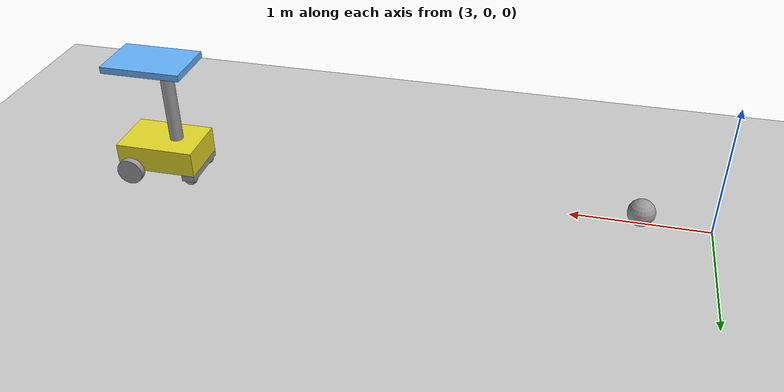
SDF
<sdf version="1.6">
 <world name="default">
  <model name="ground_plane">
   <static>1</static>
   <link name="link">
    <collision name="collision">
     <geometry><plane><normal>0 0 1</normal><size>100 100</size></plane></geometry>
     <surface><friction><ode><mu>100</mu><mu2>50</mu2></ode></friction></surface>
    </collision>
    <visual name="visual">
     <cast_shadows>0</cast_shadows>
     <geometry><plane><normal>0 0 1</normal><size>100 100</size></plane></geometry>
     <material>
      <script><uri>file://media/materials/scripts/gazebo.material</uri><name>Gazebo/Grey</name></script>
     </material>
    </visual>
   </link>
  </model>
  <model name="deliver_robot_5_0">
   <link name="link_0_clone">
    <pose>-0.002083 -0 0.033333 -0 -0 -0</pose>
    <inertial>
     <mass>1</mass>
     <inertia>
      <ixx>0.166667</ixx>
      <ixy>0</ixy>
      <ixz>0</ixz>
      <iyy>0.166667</iyy>
      <iyz>0</iyz>
      <izz>0.166667</izz>
     </inertia>
    </inertial>
    <visual name="visual">
     <geometry><box><size>0.6 0.4 0.2</size></box></geometry>
     <material>
      <lighting>1</lighting>
      <script><uri>file://media/materials/scripts/gazebo.material</uri><name>Gazebo/Yellow</name></script>
      <shader type="pixel"><normal_map>__default__</normal_map></shader>
      <ambient>0.2 0.8 1 1</ambient>
      <diffuse>0.4 0.7 1 1</diffuse>
      <specular>0.2 0.2 0.2 1</specular>
      <emissive>0 0 0 1</emissive>
     </material>
    </visual>
    <collision name="collision">
     <geometry><box><size>0.6 0.4 0.2</size></box></geometry>
     <surface>
      <friction>
       <ode><mu>1</mu><mu2>1</mu2><fdir1>0 0 0</fdir1><slip1>0</slip1><slip2>0</slip2></ode>
       <torsional>
        <coefficient>1</coefficient>
        <patch_radius>0</patch_radius>
        <surface_radius>0</surface_radius>
        <use_patch_radius>1</use_patch_radius>
        <ode><slip>0</slip></ode>
       </torsional>
      </friction>
      <bounce><restitution_coefficient>0</restitution_coefficient><threshold>1e+06</threshold></bounce>
      <contact>
       <collide_without_contact>0</collide_without_contact>
       <collide_without_contact_bitmask>1</collide_without_contact_bitmask>
       <collide_bitmask>1</collide_bitmask>
       <ode>
        <soft_cfm>0</soft_cfm>
        <soft_erp>0.2</soft_erp>
        <kp>1e+13</kp>
        <kd>1</kd>
        <max_vel>0.01</max_vel>
        <min_depth>0</min_depth>
       </ode>
       <bullet>
        <split_impulse>1</split_impulse>
        <split_impulse_penetration_threshold>-0.01</split_impulse_penetration_threshold>
        <soft_cfm>0</soft_cfm>
        <soft_erp>0.2</soft_erp>
        <kp>1e+13</kp>
        <kd>1</kd>
       </bullet>
      </contact>
     </surface>
    </collision>
   </link>
   <link name="link_1_clone">
    <pose>0.197917 -0.22501 -0.066667 1.5707 -0 0</pose>
    <inertial>
     <mass>1</mass>
     <inertia><ixx>0.145833</ixx><ixy>0</ixy><ixz>0</ixz><iyy>0.145833</iyy><iyz>0</iyz><izz>0.125</izz></inertia>
    </inertial>
    <visual name="visual">
     <geometry><cylinder><radius>0.1</radius><length>0.05</length></cylinder></geometry>
     <material>
      <lighting>1</lighting>
      <script><uri>file://media/materials/scripts/gazebo.material</uri><name>Gazebo/Grey</name></script>
      <shader type="pixel"><normal_map>__default__</normal_map></shader>
      <ambient>0.3 0.3 0.3 1</ambient>
      <diffuse>0.7 0.7 0.7 1</diffuse>
      <specular>0.01 0.01 0.01 1</specular>
      <emissive>0 0 0 1</emissive>
     </material>
    </visual>
    <collision name="collision">
     <geometry><cylinder><radius>0.1</radius><length>0.05</length></cylinder></geometry>
     <surface>
      <friction>
       <ode><mu>1</mu><mu2>1</mu2><fdir1>0 0 0</fdir1><slip1>0</slip1><slip2>0</slip2></ode>
       <torsional>
        <coefficient>1</coefficient>
        <patch_radius>0</patch_radius>
        <surface_radius>0</surface_radius>
        <use_patch_radius>1</use_patch_radius>
        <ode><slip>0</slip></ode>
       </torsional>
      </friction>
      <bounce><restitution_coefficient>0</restitution_coefficient><threshold>1e+06</threshold></bounce>
      <contact>
       <collide_without_contact>0</collide_without_contact>
       <collide_without_contact_bitmask>1</collide_without_contact_bitmask>
       <collide_bitmask>1</collide_bitmask>
       <ode>
        <soft_cfm>0</soft_cfm>
        <soft_erp>0.2</soft_erp>
        <kp>1e+13</kp>
        <kd>1</kd>
        <max_vel>0.01</max_vel>
        <min_depth>0</min_depth>
       </ode>
       <bullet>
        <split_impulse>1</split_impulse>
        <split_impulse_penetration_threshold>-0.01</split_impulse_penetration_threshold>
        <soft_cfm>0</soft_cfm>
        <soft_erp>0.2</soft_erp>
        <kp>1e+13</kp>
        <kd>1</kd>
       </bullet>
      </contact>
     </surface>
    </collision>
   </link>
   <link name="link_1_clone_0">
    <pose>0.197917 0.22501 -0.066667 1.5707 -0 0</pose>
    <inertial>
     <mass>1</mass>
     <inertia><ixx>0.145833</ixx><ixy>0</ixy><ixz>0</ixz><iyy>0.145833</iyy><iyz>0</iyz><izz>0.125</izz></inertia>
    </inertial>
    <visual name="visual">
     <geometry><cylinder><radius>0.1</radius><length>0.05</length></cylinder></geometry>
     <material>
      <lighting>1</lighting>
      <script><uri>file://media/materials/scripts/gazebo.material</uri><name>Gazebo/Grey</name></script>
      <shader type="pixel"><normal_map>__default__</normal_map></shader>
      <ambient>0.3 0.3 0.3 1</ambient>
      <diffuse>0.7 0.7 0.7 1</diffuse>
      <specular>0.01 0.01 0.01 1</specular>
      <emissive>0 0 0 1</emissive>
     </material>
    </visual>
    <collision name="collision">
     <geometry><cylinder><radius>0.1</radius><length>0.05</length></cylinder></geometry>
     <surface>
      <friction>
       <ode><mu>1</mu><mu2>1</mu2><fdir1>0 0 0</fdir1><slip1>0</slip1><slip2>0</slip2></ode>
       <torsional>
        <coefficient>1</coefficient>
        <patch_radius>0</patch_radius>
        <surface_radius>0</surface_radius>
        <use_patch_radius>1</use_patch_radius>
        <ode><slip>0</slip></ode>
       </torsional>
      </friction>
      <bounce><restitution_coefficient>0</restitution_coefficient><threshold>1e+06</threshold></bounce>
      <contact>
       <collide_without_contact>0</collide_without_contact>
       <collide_without_contact_bitmask>1</collide_without_contact_bitmask>
       <collide_bitmask>1</collide_bitmask>
       <ode>
        <soft_cfm>0</soft_cfm>
        <soft_erp>0.2</soft_erp>
        <kp>1e+13</kp>
        <kd>1</kd>
        <max_vel>0.01</max_vel>
        <min_depth>0</min_depth>
       </ode>
       <bullet>
        <split_impulse>1</split_impulse>
        <split_impulse_penetration_threshold>-0.01</split_impulse_penetration_threshold>
        <soft_cfm>0</soft_cfm>
        <soft_erp>0.2</soft_erp>
        <kp>1e+13</kp>
        <kd>1</kd>
       </bullet>
      </contact>
     </surface>
    </collision>
   </link>
   <link name="link_2_clone">
    <pose>-0.252083 -0.15 -0.116667 -0 -0 -0</pose>
    <inertial>
     <mass>1</mass>
     <inertia><ixx>0.1</ixx><ixy>0</ixy><ixz>0</ixz><iyy>0.1</iyy><iyz>0</iyz><izz>0.1</izz></inertia>
    </inertial>
    <visual name="visual">
     <geometry><sphere><radius>0.05</radius></sphere></geometry>
     <material>
      <lighting>1</lighting>
      <script><uri>file://media/materials/scripts/gazebo.material</uri><name>Gazebo/Grey</name></script>
      <shader type="pixel"><normal_map>__default__</normal_map></shader>
      <ambient>1 1 1 1</ambient>
      <diffuse>0.7 0.7 0.7 1</diffuse>
      <specular>0.01 0.01 0.01 1</specular>
      <emissive>0 0 0 1</emissive>
     </material>
    </visual>
    <collision name="collision">
     <geometry><sphere><radius>0.05</radius></sphere></geometry>
     <surface>
      <friction>
       <ode><mu>1</mu><mu2>1</mu2><fdir1>0 0 0</fdir1><slip1>0</slip1><slip2>0</slip2></ode>
       <torsional>
        <coefficient>1</coefficient>
        <patch_radius>0</patch_radius>
        <surface_radius>0</surface_radius>
        <use_patch_radius>1</use_patch_radius>
        <ode><slip>0</slip></ode>
       </torsional>
      </friction>
      <bounce><restitution_coefficient>0</restitution_coefficient><threshold>1e+06</threshold></bounce>
      <contact>
       <collide_without_contact>0</collide_without_contact>
       <collide_without_contact_bitmask>1</collide_without_contact_bitmask>
       <collide_bitmask>1</collide_bitmask>
       <ode>
        <soft_cfm>0</soft_cfm>
        <soft_erp>0.2</soft_erp>
        <kp>1e+13</kp>
        <kd>1</kd>
        <max_vel>0.01</max_vel>
        <min_depth>0</min_depth>
       </ode>
       <bullet>
        <split_impulse>1</split_impulse>
        <split_impulse_penetration_threshold>-0.01</split_impulse_penetration_threshold>
        <soft_cfm>0</soft_cfm>
        <soft_erp>0.2</soft_erp>
        <kp>1e+13</kp>
        <kd>1</kd>
       </bullet>
      </contact>
     </surface>
    </collision>
   </link>
   <link name="link_2_clone_0">
    <pose>-0.252083 0.15 -0.116667 -0 -0 -0</pose>
    <inertial>
     <mass>1</mass>
     <inertia><ixx>0.1</ixx><ixy>0</ixy><ixz>0</ixz><iyy>0.1</iyy><iyz>0</iyz><izz>0.1</izz></inertia>
    </inertial>
    <visual name="visual">
     <geometry><sphere><radius>0.05</radius></sphere></geometry>
     <material>
      <lighting>1</lighting>
      <script><uri>file://media/materials/scripts/gazebo.material</uri><name>Gazebo/Grey</name></script>
      <shader type="pixel"><normal_map>__default__</normal_map></shader>
      <ambient>1 1 1 1</ambient>
      <diffuse>0.7 0.7 0.7 1</diffuse>
      <specular>0.01 0.01 0.01 1</specular>
      <emissive>0 0 0 1</emissive>
     </material>
    </visual>
    <collision name="collision">
     <geometry><sphere><radius>0.05</radius></sphere></geometry>
     <surface>
      <friction>
       <ode><mu>1</mu><mu2>1</mu2><fdir1>0 0 0</fdir1><slip1>0</slip1><slip2>0</slip2></ode>
       <torsional>
        <coefficient>1</coefficient>
        <patch_radius>0</patch_radius>
        <surface_radius>0</surface_radius>
        <use_patch_radius>1</use_patch_radius>
        <ode><slip>0</slip></ode>
       </torsional>
      </friction>
      <bounce><restitution_coefficient>0</restitution_coefficient><threshold>1e+06</threshold></bounce>
      <contact>
       <collide_without_contact>0</collide_without_contact>
       <collide_without_contact_bitmask>1</collide_without_contact_bitmask>
       <collide_bitmask>1</collide_bitmask>
       <ode>
        <soft_cfm>0</soft_cfm>
        <soft_erp>0.2</soft_erp>
        <kp>1e+13</kp>
        <kd>1</kd>
        <max_vel>0.01</max_vel>
        <min_depth>0</min_depth>
       </ode>
       <bullet>
        <split_impulse>1</split_impulse>
        <split_impulse_penetration_threshold>-0.01</split_impulse_penetration_threshold>
        <soft_cfm>0</soft_cfm>
        <soft_erp>0.2</soft_erp>
        <kp>1e+13</kp>
        <kd>1</kd>
       </bullet>
      </contact>
     </surface>
    </collision>
   </link>
   <link name="link_3_clone">
    <pose>-0.252083 -0 -0.091667 -0 -0 -0</pose>
    <inertial>
     <mass>1</mass>
     <inertia>
      <ixx>0.166667</ixx>
      <ixy>0</ixy>
      <ixz>0</ixz>
      <iyy>0.166667</iyy>
      <iyz>0</iyz>
      <izz>0.166667</izz>
     </inertia>
    </inertial>
    <visual name="visual">
     <geometry><box><size>0.1 0.4 0.05</size></box></geometry>
     <material>
      <lighting>1</lighting>
      <script><uri>file://media/materials/scripts/gazebo.material</uri><name>Gazebo/Grey</name></script>
      <shader type="pixel"><normal_map>__default__</normal_map></shader>
      <ambient>0.3 0.3 0.3 1</ambient>
      <diffuse>0.7 0.7 0.7 1</diffuse>
      <specular>0.01 0.01 0.01 1</specular>
      <emissive>0 0 0 1</emissive>
     </material>
    </visual>
    <collision name="collision">
     <geometry><box><size>0.1 0.4 0.05</size></box></geometry>
     <surface>
      <friction>
       <ode><mu>1</mu><mu2>1</mu2><fdir1>0 0 0</fdir1><slip1>0</slip1><slip2>0</slip2></ode>
       <torsional>
        <coefficient>1</coefficient>
        <patch_radius>0</patch_radius>
        <surface_radius>0</surface_radius>
        <use_patch_radius>1</use_patch_radius>
        <ode><slip>0</slip></ode>
       </torsional>
      </friction>
      <bounce><restitution_coefficient>0</restitution_coefficient><threshold>1e+06</threshold></bounce>
      <contact>
       <collide_without_contact>0</collide_without_contact>
       <collide_without_contact_bitmask>1</collide_without_contact_bitmask>
       <collide_bitmask>1</collide_bitmask>
       <ode>
        <soft_cfm>0</soft_cfm>
        <soft_erp>0.2</soft_erp>
        <kp>1e+13</kp>
        <kd>1</kd>
        <max_vel>0.01</max_vel>
        <min_depth>0</min_depth>
       </ode>
       <bullet>
        <split_impulse>1</split_impulse>
        <split_impulse_penetration_threshold>-0.01</split_impulse_penetration_threshold>
        <soft_cfm>0</soft_cfm>
        <soft_erp>0.2</soft_erp>
        <kp>1e+13</kp>
        <kd>1</kd>
       </bullet>
      </contact>
     </surface>
    </collision>
   </link>
   <link name="link_4_clone">
    <pose>-0.002083 -0 0.758333 -0 -0 -0</pose>
    <inertial>
     <mass>1</mass>
     <inertia>
      <ixx>0.166667</ixx>
      <ixy>0</ixy>
      <ixz>0</ixz>
      <iyy>0.166667</iyy>
      <iyz>0</iyz>
      <izz>0.166667</izz>
     </inertia>
    </inertial>
    <visual name="visual">
     <geometry><box><size>0.6 0.4 0.05</size></box></geometry>
     <material>
      <lighting>1</lighting>
      <script><uri>file://media/materials/scripts/gazebo.material</uri><name>Gazebo/Grey</name></script>
      <shader type="pixel"><normal_map>__default__</normal_map></shader>
      <ambient>0.2 0.8 1 1</ambient>
      <diffuse>0.4 0.7 1 1</diffuse>
      <specular>0.2 0.2 0.2 1</specular>
      <emissive>0 0 0 1</emissive>
     </material>
    </visual>
    <collision name="collision">
     <geometry><box><size>0.6 0.4 0.05</size></box></geometry>
     <surface>
      <friction>
       <ode><mu>1</mu><mu2>1</mu2><fdir1>0 0 0</fdir1><slip1>0</slip1><slip2>0</slip2></ode>
       <torsional>
        <coefficient>1</coefficient>
        <patch_radius>0</patch_radius>
        <surface_radius>0</surface_radius>
        <use_patch_radius>1</use_patch_radius>
        <ode><slip>0</slip></ode>
       </torsional>
      </friction>
      <bounce><restitution_coefficient>0</restitution_coefficient><threshold>1e+06</threshold></bounce>
      <contact>
       <collide_without_contact>0</collide_without_contact>
       <collide_without_contact_bitmask>1</collide_without_contact_bitmask>
       <collide_bitmask>1</collide_bitmask>
       <ode>
        <soft_cfm>0</soft_cfm>
        <soft_erp>0.2</soft_erp>
        <kp>1e+13</kp>
        <kd>1</kd>
        <max_vel>0.01</max_vel>
        <min_depth>0</min_depth>
       </ode>
       <bullet>
        <split_impulse>1</split_impulse>
        <split_impulse_penetration_threshold>-0.01</split_impulse_penetration_threshold>
        <soft_cfm>0</soft_cfm>
        <soft_erp>0.2</soft_erp>
        <kp>1e+13</kp>
        <kd>1</kd>
       </bullet>
      </contact>
     </surface>
    </collision>
   </link>
   <link name="link_5_clone">
    <pose>-0.102083 -0 0.433333 -0 -0 -0</pose>
    <inertial>
     <mass>1</mass>
     <inertia><ixx>0.145833</ixx><ixy>0</ixy><ixz>0</ixz><iyy>0.145833</iyy><iyz>0</iyz><izz>0.125</izz></inertia>
    </inertial>
    <visual name="visual">
     <geometry><cylinder><radius>0.05</radius><length>0.6</length></cylinder></geometry>
     <material>
      <lighting>1</lighting>
      <script><uri>file://media/materials/scripts/gazebo.material</uri><name>Gazebo/Grey</name></script>
      <shader type="pixel"><normal_map>__default__</normal_map></shader>
      <ambient>0 0 0 1</ambient>
      <diffuse>0.7 0.7 0.7 1</diffuse>
      <specular>0.01 0.01 0.01 1</specular>
      <emissive>0 0 0 1</emissive>
     </material>
    </visual>
    <collision name="collision">
     <geometry><cylinder><radius>0.05</radius><length>0.6</length></cylinder></geometry>
     <surface>
      <friction>
       <ode><mu>1</mu><mu2>1</mu2><fdir1>0 0 0</fdir1><slip1>0</slip1><slip2>0</slip2></ode>
       <torsional>
        <coefficient>1</coefficient>
        <patch_radius>0</patch_radius>
        <surface_radius>0</surface_radius>
        <use_patch_radius>1</use_patch_radius>
        <ode><slip>0</slip></ode>
       </torsional>
      </friction>
      <bounce><restitution_coefficient>0</restitution_coefficient><threshold>1e+06</threshold></bounce>
      <contact>
       <collide_without_contact>0</collide_without_contact>
       <collide_without_contact_bitmask>1</collide_without_contact_bitmask>
       <collide_bitmask>1</collide_bitmask>
       <ode>
        <soft_cfm>0</soft_cfm>
        <soft_erp>0.2</soft_erp>
        <kp>1e+13</kp>
        <kd>1</kd>
        <max_vel>0.01</max_vel>
        <min_depth>0</min_depth>
       </ode>
       <bullet>
        <split_impulse>1</split_impulse>
        <split_impulse_penetration_threshold>-0.01</split_impulse_penetration_threshold>
        <soft_cfm>0</soft_cfm>
        <soft_erp>0.2</soft_erp>
        <kp>1e+13</kp>
        <kd>1</kd>
       </bullet>
      </contact>
     </surface>
    </collision>
   </link>
   <joint name="link_0_clone_JOINT_0" type="revolute">
    <parent>link_0_clone</parent>
    <child>link_1_clone_0</child>
    <axis>
     <xyz>0 0 1</xyz>
     <use_parent_model_frame>0</use_parent_model_frame>
     <limit>
      <lower>-1.79769e+308</lower>
      <upper>1.79769e+308</upper>
      <effort>-1</effort>
      <velocity>-1</velocity>
     </limit>
     <dynamics>
      <spring_reference>0</spring_reference>
      <spring_stiffness>0</spring_stiffness>
      <damping>0</damping>
      <friction>0</friction>
     </dynamics>
    </axis>
    <physics>
     <ode><limit><cfm>0</cfm><erp>0.2</erp></limit><suspension><cfm>0</cfm><erp>0.2</erp></suspension></ode>
    </physics>
   </joint>
   <joint name="link_0_clone_JOINT_1" type="revolute">
    <parent>link_0_clone</parent>
    <child>link_1_clone</child>
    <axis>
     <xyz>0 0 1</xyz>
     <use_parent_model_frame>0</use_parent_model_frame>
     <limit>
      <lower>-1.79769e+308</lower>
      <upper>1.79769e+308</upper>
      <effort>-1</effort>
      <velocity>-1</velocity>
     </limit>
     <dynamics>
      <spring_reference>0</spring_reference>
      <spring_stiffness>0</spring_stiffness>
      <damping>0</damping>
      <friction>0</friction>
     </dynamics>
    </axis>
    <physics>
     <ode><limit><cfm>0</cfm><erp>0.2</erp></limit><suspension><cfm>0</cfm><erp>0.2</erp></suspension></ode>
    </physics>
   </joint>
   <joint name="link_0_clone_JOINT_5" type="fixed">
    <parent>link_0_clone</parent>
    <child>link_3_clone</child>
    <physics>
     <ode><limit><cfm>0</cfm><erp>0.2</erp></limit><suspension><cfm>0</cfm><erp>0.2</erp></suspension></ode>
    </physics>
   </joint>
   <joint name="link_0_clone_JOINT_8" type="revolute">
    <parent>link_0_clone</parent>
    <child>link_5_clone</child>
    <axis>
     <xyz>0 0 1</xyz>
     <use_parent_model_frame>0</use_parent_model_frame>
     <limit>
      <lower>-1.79769e+308</lower>
      <upper>1.79769e+308</upper>
      <effort>-1</effort>
      <velocity>-1</velocity>
     </limit>
     <dynamics>
      <spring_reference>0</spring_reference>
      <spring_stiffness>0</spring_stiffness>
      <damping>0</damping>
      <friction>0</friction>
     </dynamics>
    </axis>
    <physics>
     <ode><limit><cfm>0</cfm><erp>0.2</erp></limit><suspension><cfm>0</cfm><erp>0.2</erp></suspension></ode>
    </physics>
   </joint>
   <joint name="link_3_clone_JOINT_6" type="ball">
    <parent>link_3_clone</parent>
    <child>link_2_clone</child>
    <physics>
     <ode><limit><cfm>0</cfm><erp>0.2</erp></limit><suspension><cfm>0</cfm><erp>0.2</erp></suspension></ode>
    </physics>
   </joint>
   <joint name="link_3_clone_JOINT_7" type="revolute">
    <parent>link_3_clone</parent>
    <child>link_2_clone_0</child>
    <axis>
     <xyz>1 0 0</xyz>
     <use_parent_model_frame>0</use_parent_model_frame>
     <limit>
      <lower>-1.79769e+308</lower>
      <upper>1.79769e+308</upper>
      <effort>-1</effort>
      <velocity>-1</velocity>
     </limit>
     <dynamics>
      <spring_reference>0</spring_reference>
      <spring_stiffness>0</spring_stiffness>
      <damping>0</damping>
      <friction>0</friction>
     </dynamics>
    </axis>
    <physics>
     <ode><limit><cfm>0</cfm><erp>0.2</erp></limit><suspension><cfm>0</cfm><erp>0.2</erp></suspension></ode>
    </physics>
   </joint>
   <joint name="link_5_clone_JOINT_9" type="fixed">
    <parent>link_5_clone</parent>
    <child>link_4_clone</child>
    <physics>
     <ode><limit><cfm>0</cfm><erp>0.2</erp></limit><suspension><cfm>0</cfm><erp>0.2</erp></suspension></ode>
    </physics>
   </joint>
   <static>0</static>
   <pose>7.08115 0.106111 0.166669 1e-06 -1e-05 0.000347</pose>
  </model>
  <model name="my_ball">
   <link name="link_0">
    <inertial>
     <mass>1</mass>
     <inertia><ixx>0.1</ixx><ixy>0</ixy><ixz>0</ixz><iyy>0.1</iyy><iyz>0</iyz><izz>0.1</izz></inertia>
    </inertial>
    <visual name="visual">
     <geometry><sphere><radius>0.1</radius></sphere></geometry>
     <material>
      <lighting>1</lighting>
      <script><uri>file://media/materials/scripts/gazebo.material</uri><name>Gazebo/Grey</name></script>
      <ambient>1 1 1 1</ambient>
      <diffuse>1 1 1 1</diffuse>
      <specular>1 1 1 1</specular>
      <emissive>1 1 1 1</emissive>
      <shader type="vertex"><normal_map>__default__</normal_map></shader>
     </material>
    </visual>
    <collision name="collision">
     <geometry><sphere><radius>0.1</radius></sphere></geometry>
     <surface>
      <friction>
       <ode><mu>1</mu><mu2>1</mu2><fdir1>0 0 0</fdir1><slip1>0</slip1><slip2>0</slip2></ode>
       <torsional>
        <coefficient>1</coefficient>
        <patch_radius>0</patch_radius>
        <surface_radius>0</surface_radius>
        <use_patch_radius>1</use_patch_radius>
        <ode><slip>0</slip></ode>
       </torsional>
      </friction>
      <bounce><restitution_coefficient>0</restitution_coefficient><threshold>1e+06</threshold></bounce>
      <contact>
       <collide_without_contact>0</collide_without_contact>
       <collide_without_contact_bitmask>1</collide_without_contact_bitmask>
       <collide_bitmask>1</collide_bitmask>
       <ode>
        <soft_cfm>0</soft_cfm>
        <soft_erp>0.2</soft_erp>
        <kp>1e+13</kp>
        <kd>1</kd>
        <max_vel>0.01</max_vel>
        <min_depth>0</min_depth>
       </ode>
       <bullet>
        <split_impulse>1</split_impulse>
        <split_impulse_penetration_threshold>-0.01</split_impulse_penetration_threshold>
        <soft_cfm>0</soft_cfm>
        <soft_erp>0.2</soft_erp>
        <kp>1e+13</kp>
        <kd>1</kd>
       </bullet>
      </contact>
     </surface>
    </collision>
   </link>
   <static>0</static>
   <pose>3.5 0 0.1 0 -0 0</pose>
  </model>
 </world>
</sdf>
